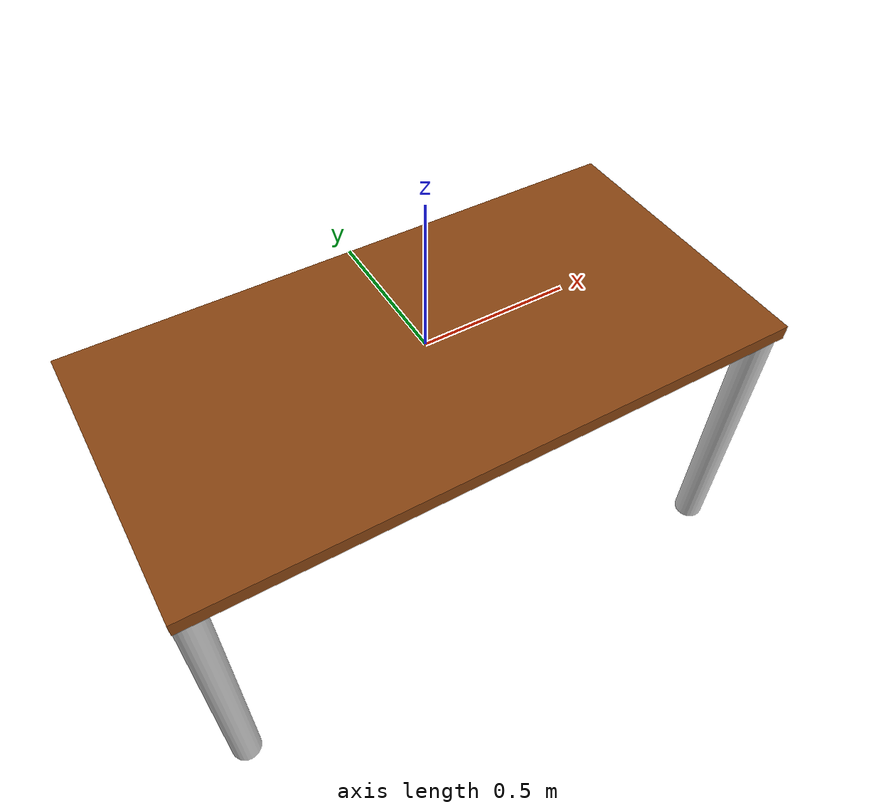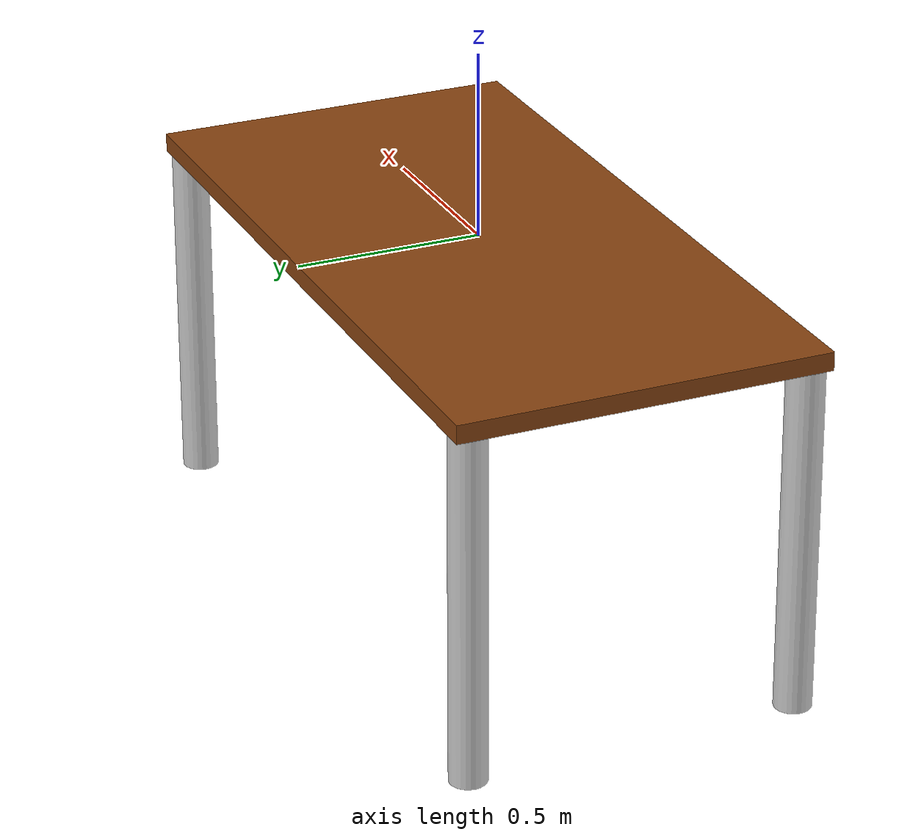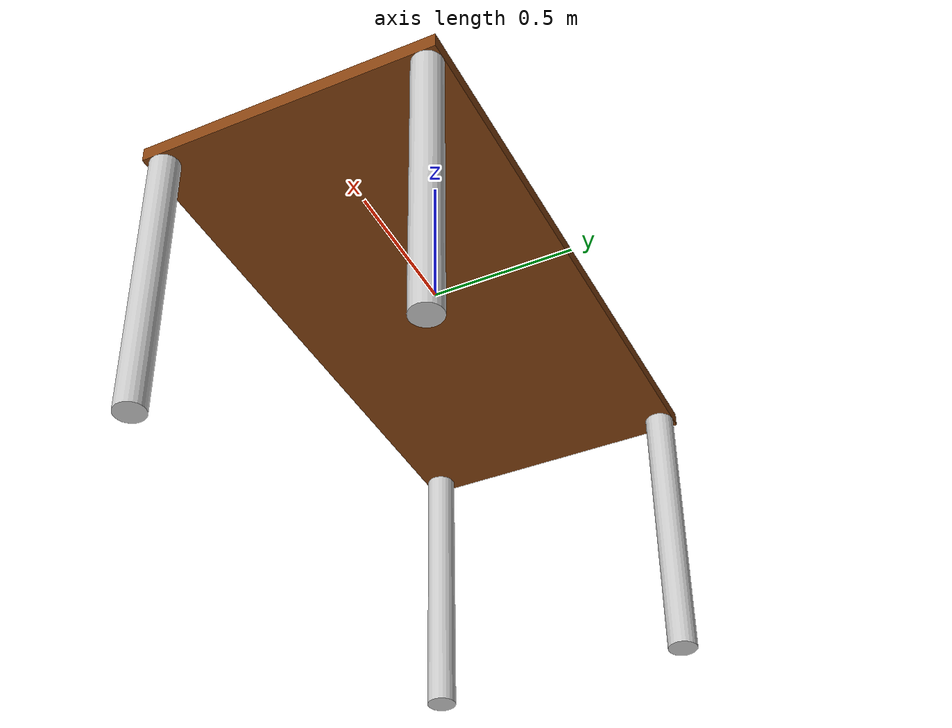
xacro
<?xml version="1.0" encoding="UTF-8"?>
<robot xmlns:xacro="http://wiki.ros.org/xacro" name="table">

  <!-- copy and paste the contents of "rrbot_macro.xacro" here -->
  <xacro:include filename="materials.xacro" />
  <xacro:include filename="table_macro.xacro"/>

  <!-- create link fixed to the "world" -->
  <link name="world" />

  <!-- create the first table -->
  <xacro:table prefix="table1_" parent="world">
    <!-- position robot in the world -->
    <origin xyz="0 0 0" rpy="0 0 0" />
  </xacro:table>

</robot>

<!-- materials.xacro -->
<robot>
    <material name="black">
        <color rgba="0.0 0.0 0.0 1.0" />
    </material>

    <material name="blue">
        <color rgba="0.0 0.0 0.8 1.0" />
    </material>

    <material name="green">
        <color rgba="0.0 1.0 0.0 1.0" />
    </material>

    <material name="dark_grey">
        <color rgba="0.2 0.2 0.2 1.0" />
    </material>

    <material name="grey">
        <color rgba="0.5 0.5 0.5 1.0" />
    </material>

    <material name="light_grey">
        <color rgba="0.8 0.8 0.8 1.0" />
    </material>

    <material name="brown">
        <color rgba="0.54 0.27 0.07 1.0"/>
      </material>

    <material name="red">
        <color rgba="0.8 0.0 0.0 1.0" />
    </material>

    <material name="white">
        <color rgba="1.0 1.0 1.0 1.0" />
    </material>

</robot>

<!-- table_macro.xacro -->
<robot xmlns:xacro="http://www.ros.org/wiki/xacro">

    <xacro:macro name="table" params="prefix parent *origin">

        <xacro:property name="table_length" value="2.0"/>
        <xacro:property name="table_width"  value="1.0"/>
        <xacro:property name="table_height" value="1.0"/>
        <xacro:property name="table_thickness" value="0.05"/>
        <xacro:property name="leg_length" value="${table_height - table_thickness}"/>
        <xacro:property name="leg_radius" value="0.05"/>

        <!--Joint 1 Attached to Ground-->
        <joint name="${prefix}leg1" type="fixed">
            <origin rpy="0 0 0" xyz="${table_length / 2 - leg_radius} ${table_width / 2 - leg_radius} ${-table_thickness}" />
            <parent link="${prefix}top" />
            <child link="${prefix}link1" />
        </joint>

        <!-- Link1 -->
        <link name="${prefix}link1">
            <visual>
            <origin rpy="0 0 0" xyz="0 0 ${-leg_length / 2}" />
            <geometry>
                <cylinder radius="${leg_radius}" length="${leg_length}" />
            </geometry>
            <material name="light_grey" />
            </visual>
        </link>

        <!--Joint 2 Attached to Ground-->
        <joint name="${prefix}leg2" type="fixed">
            <origin rpy="0 0 0" xyz="${-(table_length / 2 - leg_radius)} ${table_width / 2 - leg_radius} ${-table_thickness}" />
            <parent link="${prefix}top" />
            <child link="${prefix}link2" />
        </joint>

        <!-- Link2 -->
        <link name="${prefix}link2">
            <visual>
            <origin rpy="0 0 0" xyz="0 0 ${-leg_length / 2}" />
            <geometry>
                <cylinder radius="${leg_radius}" length="${leg_length}" />
            </geometry>
            <material name="light_grey" />
            </visual>
        </link>

        <!--Joint 3 Attached to Ground-->
        <joint name="${prefix}leg3" type="fixed">
            <origin rpy="0 0 0" xyz="${(table_length / 2 - leg_radius)} ${-(table_width / 2 - leg_radius)} ${-table_thickness}" />
            <parent link="${prefix}top" />
            <child link="${prefix}link3" />
        </joint>

        <!-- Link3 -->
        <link name="${prefix}link3">
            <visual>
            <origin rpy="0 0 0" xyz="0 0 ${-leg_length / 2}" />
            <geometry>
                <cylinder radius="${leg_radius}" length="${leg_length}" />
            </geometry>
            <material name="light_grey" />
            </visual>
        </link>

        <!--Joint 4 Attached to Ground-->
        <joint name="${prefix}leg4" type="fixed">
            <origin rpy="0 0 0" xyz="${-(table_length / 2 - leg_radius)} ${-(table_width / 2 - leg_radius)} ${-table_thickness}" />
            <parent link="${prefix}top" />
            <child link="${prefix}link4" />
        </joint>

        <!-- Link4 -->
        <link name="${prefix}link4">
            <visual>
            <origin rpy="0 0 0" xyz="0 0 ${-leg_length / 2}" />
            <geometry>
                <cylinder radius="${leg_radius}" length="${leg_length}" />
            </geometry>
            <material name="light_grey" />
            </visual>
        </link>

        <!--Top of Table joint-->
        <joint name="${prefix}tabletop" type="fixed">
            <xacro:insert_block name="origin" />
            <parent link="${parent}" />
            <child link="${prefix}top" />
        </joint>

        <!-- Top -->
        <link name="${prefix}top">
            <visual>
            <origin rpy="0 0 0" xyz="0 0 ${-table_thickness / 2}" />
            <geometry>
                <box size="${table_length} ${table_width} ${table_thickness}" />
            </geometry>
            <material name="brown" />
            </visual>
        </link>
    </xacro:macro>
</robot>
